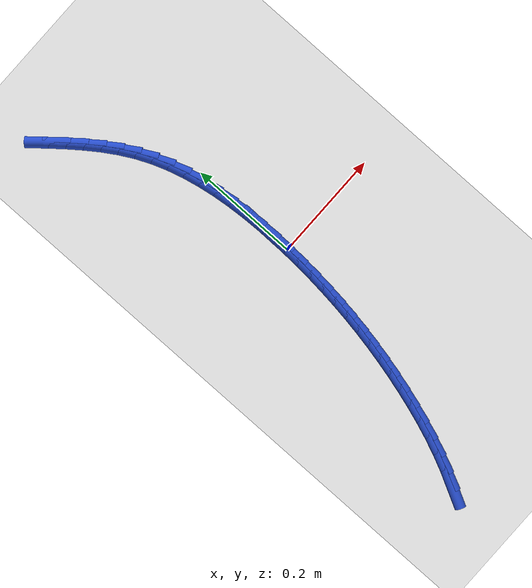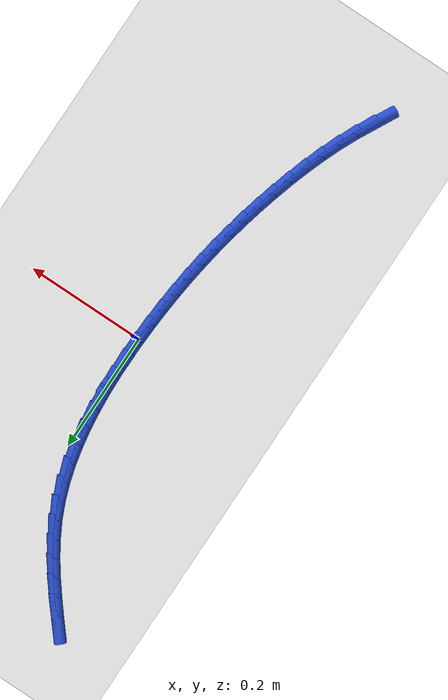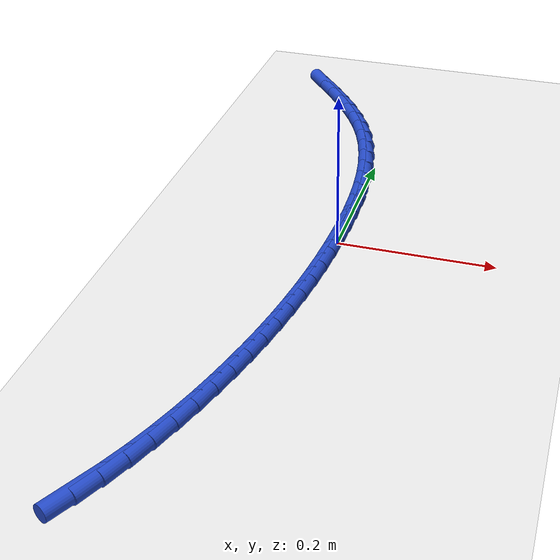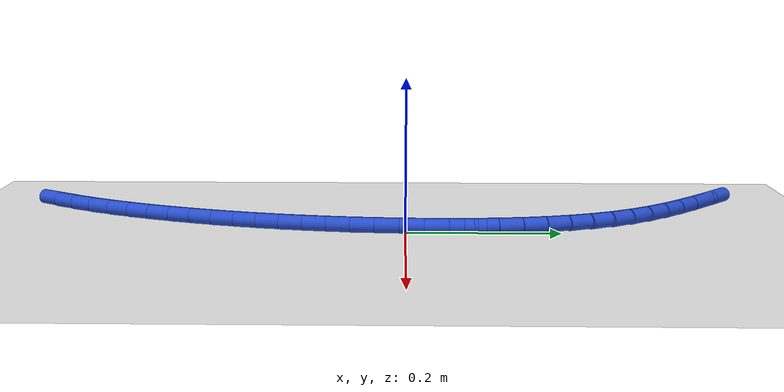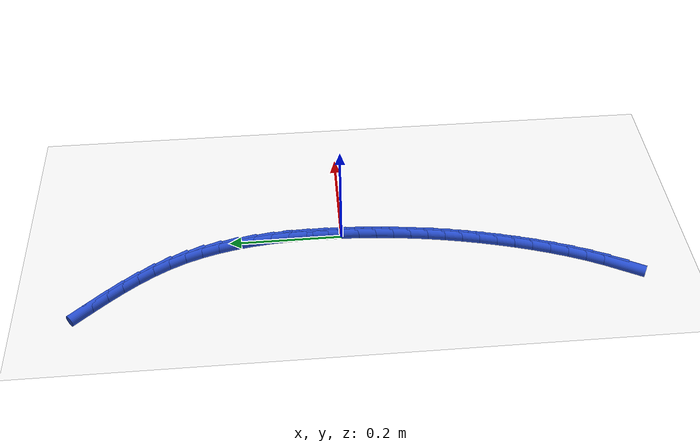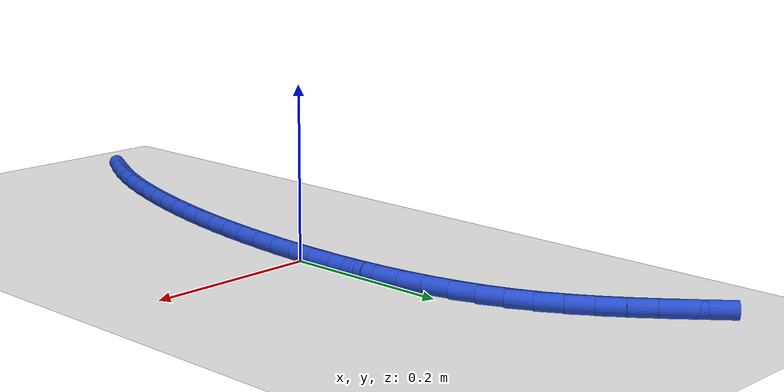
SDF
<sdf version="1.6">
 <world name="default">
  <model name="ground_plane">
   <static>1</static>
   <link name="link">
    <collision name="collision">
     <geometry><plane><normal>0 0 1</normal><size>100 100</size></plane></geometry>
     <surface><friction><ode><mu>100</mu><mu2>50</mu2></ode></friction></surface>
    </collision>
    <visual name="visual">
     <cast_shadows>0</cast_shadows>
     <geometry><plane><normal>0 0 1</normal><size>100 100</size></plane></geometry>
     <material>
      <script><uri>file://media/materials/scripts/gazebo.material</uri><name>Gazebo/WhiteGlow</name></script>
     </material>
    </visual>
   </link>
  </model>
  <model name="line">
   <link name="link_0">
    <pose>-4.7704895589362195e-18 6.938893903907228e-17 0.01 0 1.57 1.5479829463222914</pose>
    <collision name="collision">
     <geometry><cylinder><radius>0.01</radius><length>0.08</length></cylinder></geometry>
    </collision>
    <visual name="visual">
     <material>
      <script><name>Gazebo/Blue</name><uri>file://media/materials/scripts/gazebo.material</uri></script>
     </material>
     <geometry><cylinder><radius>0.01</radius><length>0.08</length></cylinder></geometry>
    </visual>
   </link>
   <link name="link_1">
    <pose>0.0007215652060651547 0.031623547547972954 0.01 0 1.57 -1.566752087686649</pose>
    <collision name="collision">
     <geometry><cylinder><radius>0.01</radius><length>0.08</length></cylinder></geometry>
    </collision>
    <visual name="visual">
     <material>
      <script><name>Gazebo/Blue</name><uri>file://media/materials/scripts/gazebo.material</uri></script>
     </material>
     <geometry><cylinder><radius>0.01</radius><length>0.08</length></cylinder></geometry>
    </visual>
   </link>
   <link name="link_2">
    <pose>0.0005930693446006309 0.0633959421741575 0.01 0 1.57 -1.5352560706885645</pose>
    <collision name="collision">
     <geometry><cylinder><radius>0.01</radius><length>0.08</length></cylinder></geometry>
    </collision>
    <visual name="visual">
     <material>
      <script><name>Gazebo/Blue</name><uri>file://media/materials/scripts/gazebo.material</uri></script>
     </material>
     <geometry><cylinder><radius>0.01</radius><length>0.08</length></cylinder></geometry>
    </visual>
   </link>
   <link name="link_3">
    <pose>-0.000536455515506556 0.09516412204797578 0.01 0 1.57 -1.4987461094732293</pose>
    <collision name="collision">
     <geometry><cylinder><radius>0.01</radius><length>0.08</length></cylinder></geometry>
    </collision>
    <visual name="visual">
     <material>
      <script><name>Gazebo/Blue</name><uri>file://media/materials/scripts/gazebo.material</uri></script>
     </material>
     <geometry><cylinder><radius>0.01</radius><length>0.08</length></cylinder></geometry>
    </visual>
   </link>
   <link name="link_4">
    <pose>-0.0028179773053693853 0.12677502533884982 0.01 0 1.57 -1.4567747647652383</pose>
    <collision name="collision">
     <geometry><cylinder><radius>0.01</radius><length>0.08</length></cylinder></geometry>
    </collision>
    <visual name="visual">
     <material>
      <script><name>Gazebo/Blue</name><uri>file://media/materials/scripts/gazebo.material</uri></script>
     </material>
     <geometry><cylinder><radius>0.01</radius><length>0.08</length></cylinder></geometry>
    </visual>
   </link>
   <link name="link_5">
    <pose>-0.006402463956100846 0.15807559021620174 0.01 0 1.57 -1.4088394910362252</pose>
    <collision name="collision">
     <geometry><cylinder><radius>0.01</radius><length>0.08</length></cylinder></geometry>
    </collision>
    <visual name="visual">
     <material>
      <script><name>Gazebo/Blue</name><uri>file://media/materials/scripts/gazebo.material</uri></script>
     </material>
     <geometry><cylinder><radius>0.01</radius><length>0.08</length></cylinder></geometry>
    </visual>
   </link>
   <link name="link_6">
    <pose>-0.011440883398813911 0.1889127548494536 0.01 0 1.57 -1.3544112373524395</pose>
    <collision name="collision">
     <geometry><cylinder><radius>0.01</radius><length>0.08</length></cylinder></geometry>
    </collision>
    <visual name="visual">
     <material>
      <script><name>Gazebo/Blue</name><uri>file://media/materials/scripts/gazebo.material</uri></script>
     </material>
     <geometry><cylinder><radius>0.01</radius><length>0.08</length></cylinder></geometry>
    </visual>
   </link>
   <link name="link_7">
    <pose>-0.01808420356462158 0.2191334574080274 0.01 0 1.57 -1.2929812264186957</pose>
    <collision name="collision">
     <geometry><cylinder><radius>0.01</radius><length>0.08</length></cylinder></geometry>
    </collision>
    <visual name="visual">
     <material>
      <script><name>Gazebo/Blue</name><uri>file://media/materials/scripts/gazebo.material</uri></script>
     </material>
     <geometry><cylinder><radius>0.01</radius><length>0.08</length></cylinder></geometry>
    </visual>
   </link>
   <link name="link_8">
    <pose>-0.026483392384636803 0.24858463606134518 0.01 0 1.57 -1.2241323928483854</pose>
    <collision name="collision">
     <geometry><cylinder><radius>0.01</radius><length>0.08</length></cylinder></geometry>
    </collision>
    <visual name="visual">
     <material>
      <script><name>Gazebo/Blue</name><uri>file://media/materials/scripts/gazebo.material</uri></script>
     </material>
     <geometry><cylinder><radius>0.01</radius><length>0.08</length></cylinder></geometry>
    </visual>
   </link>
   <link name="link_9">
    <pose>-0.036789417789972585 0.2771132289788292 0.01 0 1.57 -1.1477855805589992</pose>
    <collision name="collision">
     <geometry><cylinder><radius>0.01</radius><length>0.08</length></cylinder></geometry>
    </collision>
    <visual name="visual">
     <material>
      <script><name>Gazebo/Blue</name><uri>file://media/materials/scripts/gazebo.material</uri></script>
     </material>
     <geometry><cylinder><radius>0.01</radius><length>0.08</length></cylinder></geometry>
    </visual>
   </link>
   <link name="link_10">
    <pose>-0.04914966944523792 0.30456894852390776 0.01 0 1.57 -1.0713675540776297</pose>
    <collision name="collision">
     <geometry><cylinder><radius>0.01</radius><length>0.08</length></cylinder></geometry>
    </collision>
    <visual name="visual">
     <material>
      <script><name>Gazebo/Blue</name><uri>file://media/materials/scripts/gazebo.material</uri></script>
     </material>
     <geometry><cylinder><radius>0.01</radius><length>0.08</length></cylinder></geometry>
    </visual>
   </link>
   <link name="link_11">
    <pose>-0.06353556231688706 0.33093793847237124 0.01 0 1.57 -1.006141260931769</pose>
    <collision name="collision">
     <geometry><cylinder><radius>0.01</radius><length>0.08</length></cylinder></geometry>
    </collision>
    <visual name="visual">
     <material>
      <script><name>Gazebo/Blue</name><uri>file://media/materials/scripts/gazebo.material</uri></script>
     </material>
     <geometry><cylinder><radius>0.01</radius><length>0.08</length></cylinder></geometry>
    </visual>
   </link>
   <link name="link_12">
    <pose>-0.07966595244275039 0.356402148995462 0.01 0 1.57 -0.9534685735608708</pose>
    <collision name="collision">
     <geometry><cylinder><radius>0.01</radius><length>0.08</length></cylinder></geometry>
    </collision>
    <visual name="visual">
     <material>
      <script><name>Gazebo/Blue</name><uri>file://media/materials/scripts/gazebo.material</uri></script>
     </material>
     <geometry><cylinder><radius>0.01</radius><length>0.08</length></cylinder></geometry>
    </visual>
   </link>
   <link name="link_13">
    <pose>-0.09724017118786986 0.38115866754672745 0.01 0 1.57 -0.9133753165994942</pose>
    <collision name="collision">
     <geometry><cylinder><radius>0.01</radius><length>0.08</length></cylinder></geometry>
    </collision>
    <visual name="visual">
     <material>
      <script><name>Gazebo/Blue</name><uri>file://media/materials/scripts/gazebo.material</uri></script>
     </material>
     <geometry><cylinder><radius>0.01</radius><length>0.08</length></cylinder></geometry>
    </visual>
   </link>
   <link name="link_14">
    <pose>-0.11595754991728757 0.4054045815797148 0.01 0 1.57 -0.8855972150997148</pose>
    <collision name="collision">
     <geometry><cylinder><radius>0.01</radius><length>0.08</length></cylinder></geometry>
    </collision>
    <visual name="visual">
     <material>
      <script><name>Gazebo/Blue</name><uri>file://media/materials/scripts/gazebo.material</uri></script>
     </material>
     <geometry><cylinder><radius>0.01</radius><length>0.08</length></cylinder></geometry>
    </visual>
   </link>
   <link name="link_15">
    <pose>-0.13551741999604533 0.4293369785479711 0.01 0 1.57 -0.869770980029541</pose>
    <collision name="collision">
     <geometry><cylinder><radius>0.01</radius><length>0.08</length></cylinder></geometry>
    </collision>
    <visual name="visual">
     <material>
      <script><name>Gazebo/Blue</name><uri>file://media/materials/scripts/gazebo.material</uri></script>
     </material>
     <geometry><cylinder><radius>0.01</radius><length>0.08</length></cylinder></geometry>
    </visual>
   </link>
   <link name="link_194">
    <pose>-0.11674017639570876 -0.4806921959710968 0.01 0 1.57 1.0903423084227213</pose>
    <collision name="collision">
     <geometry><cylinder><radius>0.01</radius><length>0.08</length></cylinder></geometry>
    </collision>
    <visual name="visual">
     <material>
      <script><name>Gazebo/Blue</name><uri>file://media/materials/scripts/gazebo.material</uri></script>
     </material>
     <geometry><cylinder><radius>0.01</radius><length>0.08</length></cylinder></geometry>
    </visual>
   </link>
   <link name="link_195">
    <pose>-0.10234534802876977 -0.4530729359921014 0.01 0 1.57 1.1382183670508805</pose>
    <collision name="collision">
     <geometry><cylinder><radius>0.01</radius><length>0.08</length></cylinder></geometry>
    </collision>
    <visual name="visual">
     <material>
      <script><name>Gazebo/Blue</name><uri>file://media/materials/scripts/gazebo.material</uri></script>
     </material>
     <geometry><cylinder><radius>0.01</radius><length>0.08</length></cylinder></geometry>
    </visual>
   </link>
   <link name="link_196">
    <pose>-0.08920695088897893 -0.42461913664030637 0.01 0 1.57 1.1808959290962102</pose>
    <collision name="collision">
     <geometry><cylinder><radius>0.01</radius><length>0.08</length></cylinder></geometry>
    </collision>
    <visual name="visual">
     <material>
      <script><name>Gazebo/Blue</name><uri>file://media/materials/scripts/gazebo.material</uri></script>
     </material>
     <geometry><cylinder><radius>0.01</radius><length>0.08</length></cylinder></geometry>
    </visual>
   </link>
   <link name="link_197">
    <pose>-0.07723783473925257 -0.39549284038575616 0.01 0 1.57 1.218751544037832</pose>
    <collision name="collision">
     <geometry><cylinder><radius>0.01</radius><length>0.08</length></cylinder></geometry>
    </collision>
    <visual name="visual">
     <material>
      <script><name>Gazebo/Blue</name><uri>file://media/materials/scripts/gazebo.material</uri></script>
     </material>
     <geometry><cylinder><radius>0.01</radius><length>0.08</length></cylinder></geometry>
    </visual>
   </link>
   <link name="link_198">
    <pose>-0.06635084934250607 -0.3658560896984929 0.01 0 1.57 1.2521419645082719</pose>
    <collision name="collision">
     <geometry><cylinder><radius>0.01</radius><length>0.08</length></cylinder></geometry>
    </collision>
    <visual name="visual">
     <material>
      <script><name>Gazebo/Blue</name><uri>file://media/materials/scripts/gazebo.material</uri></script>
     </material>
     <geometry><cylinder><radius>0.01</radius><length>0.08</length></cylinder></geometry>
    </visual>
   </link>
   <link name="link_199">
    <pose>-0.05645884446165521 -0.3358709270485597 0.01 0 1.57 1.281386734308545</pose>
    <collision name="collision">
     <geometry><cylinder><radius>0.01</radius><length>0.08</length></cylinder></geometry>
    </collision>
    <visual name="visual">
     <material>
      <script><name>Gazebo/Blue</name><uri>file://media/materials/scripts/gazebo.material</uri></script>
     </material>
     <geometry><cylinder><radius>0.01</radius><length>0.08</length></cylinder></geometry>
    </visual>
   </link>
   <link name="link_200">
    <pose>-0.047474669859615716 -0.30569939490599946 0.01 0 1.57 1.306931747807411</pose>
    <collision name="collision">
     <geometry><cylinder><radius>0.01</radius><length>0.08</length></cylinder></geometry>
    </collision>
    <visual name="visual">
     <material>
      <script><name>Gazebo/Blue</name><uri>file://media/materials/scripts/gazebo.material</uri></script>
     </material>
     <geometry><cylinder><radius>0.01</radius><length>0.08</length></cylinder></geometry>
    </visual>
   </link>
   <link name="link_201">
    <pose>-0.039314539109185566 -0.27549502207017335 0.01 0 1.57 1.3311891206189586</pose>
    <collision name="collision">
     <geometry><cylinder><radius>0.01</radius><length>0.08</length></cylinder></geometry>
    </collision>
    <visual name="visual">
     <material>
      <script><name>Gazebo/Blue</name><uri>file://media/materials/scripts/gazebo.material</uri></script>
     </material>
     <geometry><cylinder><radius>0.01</radius><length>0.08</length></cylinder></geometry>
    </visual>
   </link>
   <link name="link_202">
    <pose>-0.03193817791927683 -0.24530120983309062 0.01 0 1.57 1.355670128661943</pose>
    <collision name="collision">
     <geometry><cylinder><radius>0.01</radius><length>0.08</length></cylinder></geometry>
    </collision>
    <visual name="visual">
     <material>
      <script><name>Gazebo/Blue</name><uri>file://media/materials/scripts/gazebo.material</uri></script>
     </material>
     <geometry><cylinder><radius>0.01</radius><length>0.08</length></cylinder></geometry>
    </visual>
   </link>
   <link name="link_203">
    <pose>-0.02533562981437286 -0.21508462628643435 0.01 0 1.57 1.3802951093591718</pose>
    <collision name="collision">
     <geometry><cylinder><radius>0.01</radius><length>0.08</length></cylinder></geometry>
    </collision>
    <visual name="visual">
     <material>
      <script><name>Gazebo/Blue</name><uri>file://media/materials/scripts/gazebo.material</uri></script>
     </material>
     <geometry><cylinder><radius>0.01</radius><length>0.08</length></cylinder></geometry>
    </visual>
   </link>
   <link name="link_204">
    <pose>-0.019497554800899944 -0.1848103792303019 0.01 0 1.57 1.4049489838476432</pose>
    <collision name="collision">
     <geometry><cylinder><radius>0.01</radius><length>0.08</length></cylinder></geometry>
    </collision>
    <visual name="visual">
     <material>
      <script><name>Gazebo/Blue</name><uri>file://media/materials/scripts/gazebo.material</uri></script>
     </material>
     <geometry><cylinder><radius>0.01</radius><length>0.08</length></cylinder></geometry>
    </visual>
   </link>
   <link name="link_205">
    <pose>-0.014414612885284622 -0.15444357646479132 0.01 0 1.57 1.4295154837911124</pose>
    <collision name="collision">
     <geometry><cylinder><radius>0.01</radius><length>0.08</length></cylinder></geometry>
    </collision>
    <visual name="visual">
     <material>
      <script><name>Gazebo/Blue</name><uri>file://media/materials/scripts/gazebo.material</uri></script>
     </material>
     <geometry><cylinder><radius>0.01</radius><length>0.08</length></cylinder></geometry>
    </visual>
   </link>
   <link name="link_206">
    <pose>-0.010077464073953414 -0.12394932579000079 0.01 0 1.57 1.453879409764705</pose>
    <collision name="collision">
     <geometry><cylinder><radius>0.01</radius><length>0.08</length></cylinder></geometry>
    </collision>
    <visual name="visual">
     <material>
      <script><name>Gazebo/Blue</name><uri>file://media/materials/scripts/gazebo.material</uri></script>
     </material>
     <geometry><cylinder><radius>0.01</radius><length>0.08</length></cylinder></geometry>
    </visual>
   </link>
   <link name="link_207">
    <pose>-0.0064767683733328325 -0.09329273500602829 0.01 0 1.57 1.4779288440396916</pose>
    <collision name="collision">
     <geometry><cylinder><radius>0.01</radius><length>0.08</length></cylinder></geometry>
    </collision>
    <visual name="visual">
     <material>
      <script><name>Gazebo/Blue</name><uri>file://media/materials/scripts/gazebo.material</uri></script>
     </material>
     <geometry><cylinder><radius>0.01</radius><length>0.08</length></cylinder></geometry>
    </visual>
   </link>
   <link name="link_208">
    <pose>-0.0036031857898493956 -0.06243891191297195 0.01 0 1.57 1.5015572171050573</pose>
    <collision name="collision">
     <geometry><cylinder><radius>0.01</radius><length>0.08</length></cylinder></geometry>
    </collision>
    <visual name="visual">
     <material>
      <script><name>Gazebo/Blue</name><uri>file://media/materials/scripts/gazebo.material</uri></script>
     </material>
     <geometry><cylinder><radius>0.01</radius><length>0.08</length></cylinder></geometry>
    </visual>
   </link>
   <link name="link_209">
    <pose>-0.0014473763299295778 -0.031352964310929134 0.01 0 1.57 1.524665139456082</pose>
    <collision name="collision">
     <geometry><cylinder><radius>0.01</radius><length>0.08</length></cylinder></geometry>
    </collision>
    <visual name="visual">
     <material>
      <script><name>Gazebo/Blue</name><uri>file://media/materials/scripts/gazebo.material</uri></script>
     </material>
     <geometry><cylinder><radius>0.01</radius><length>0.08</length></cylinder></geometry>
    </visual>
   </link>
   <link name="link_210">
    <pose>-2.0166160408230382e-17 -8.326672684688674e-17 0.01 0 1.57 1.5471619291271608</pose>
    <collision name="collision">
     <geometry><cylinder><radius>0.01</radius><length>0.08</length></cylinder></geometry>
    </collision>
    <visual name="visual">
     <material>
      <script><name>Gazebo/Blue</name><uri>file://media/materials/scripts/gazebo.material</uri></script>
     </material>
     <geometry><cylinder><radius>0.01</radius><length>0.08</length></cylinder></geometry>
    </visual>
   </link>
   <link name="link_211">
    <pose>0.0007482831935128843 0.03165487321971933 0.01 0 1.57 1.568966788748069</pose>
    <collision name="collision">
     <geometry><cylinder><radius>0.01</radius><length>0.08</length></cylinder></geometry>
    </collision>
    <visual name="visual">
     <material>
      <script><name>Gazebo/Blue</name><uri>file://media/materials/scripts/gazebo.material</uri></script>
     </material>
     <geometry><cylinder><radius>0.01</radius><length>0.08</length></cylinder></geometry>
    </visual>
   </link>
   <link name="link_212">
    <pose>0.0008068132441825635 0.06364654754813177 0.01 0 1.57 1.5581205405491914</pose>
    <collision name="collision">
     <geometry><cylinder><radius>0.01</radius><length>0.08</length></cylinder></geometry>
    </collision>
    <visual name="visual">
     <material>
      <script><name>Gazebo/Blue</name><uri>file://media/materials/scripts/gazebo.material</uri></script>
     </material>
     <geometry><cylinder><radius>0.01</radius><length>0.08</length></cylinder></geometry>
    </visual>
   </link>
  </model>
 </world>
</sdf>
